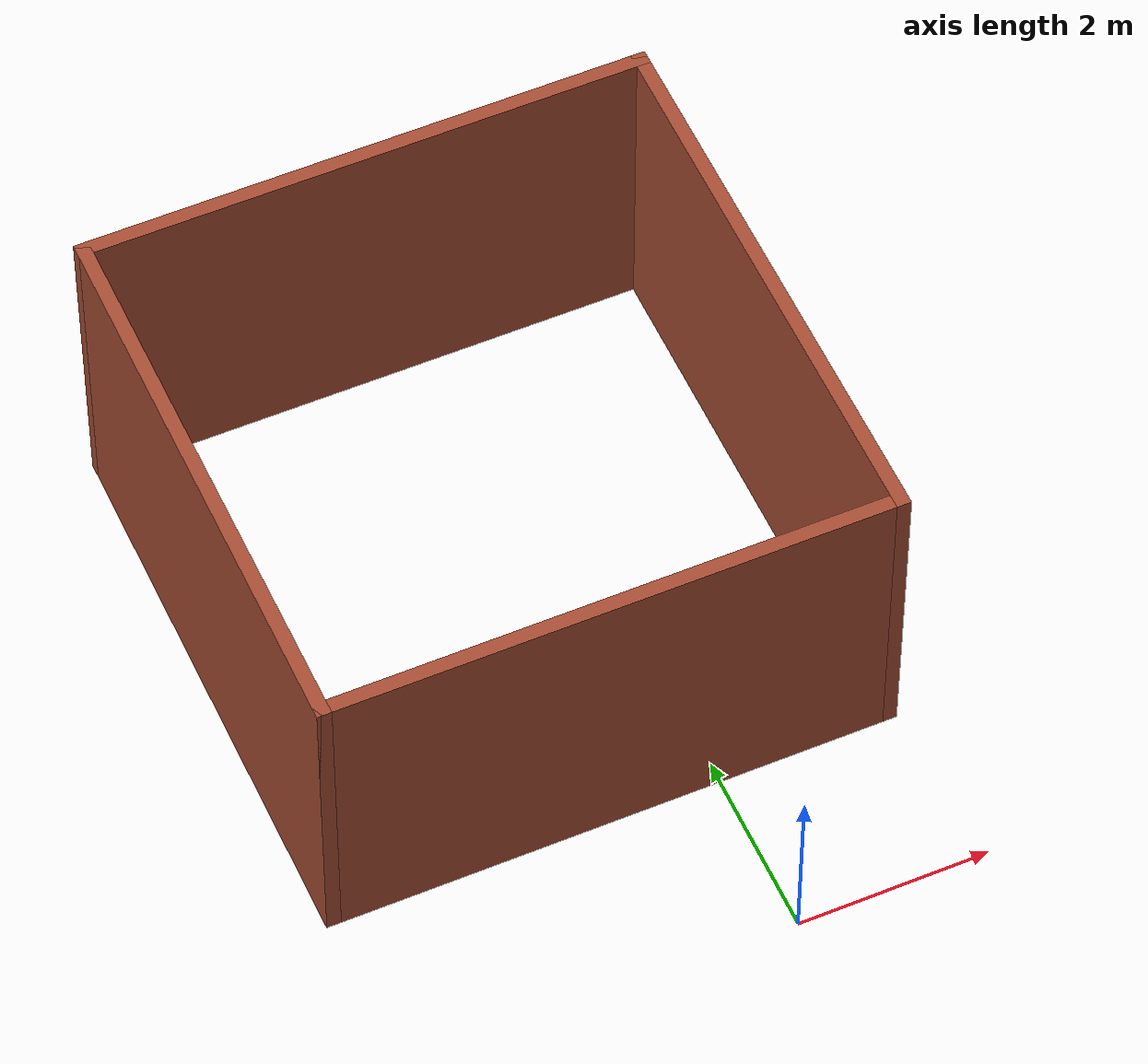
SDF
<?xml version='1.0'?>
<sdf version='1.5'>
  <model name='house_3b'>
    <pose frame=''>-1.117 4.778 0 0 -0 0</pose>
    <link name='Wall_2'>
      <collision name='Wall_2_Collision'>
        <geometry>
          <box>
            <size>6 0.15 3.5</size>
          </box>
        </geometry>
        <pose frame=''>0 0 1.75 0 -0 0</pose>
      </collision>
      <visual name='Wall_2_Visual'>
        <pose frame=''>0 0 1.75 0 -0 0</pose>
        <geometry>
          <box>
            <size>6 0.15 3.5</size>
          </box>
        </geometry>
        <material>
          <script>
            <uri>file://media/materials/scripts/gazebo.material</uri>
            <name>Gazebo/Bricks</name>
          </script>
          <ambient>1 1 1 1</ambient>
        </material>
      </visual>
      <pose frame=''>-2.925 0 0 0 0 -1.5708</pose>
    </link>
    <link name='Wall_3'>
      <collision name='Wall_3_Collision'>
        <geometry>
          <box>
            <size>6 0.15 3.5</size>
          </box>
        </geometry>
        <pose frame=''>0 0 1.75 0 -0 0</pose>
      </collision>
      <visual name='Wall_3_Visual'>
        <pose frame=''>0 0 1.75 0 -0 0</pose>
        <geometry>
          <box>
            <size>6 0.15 3.5</size>
          </box>
        </geometry>
        <material>
          <script>
            <uri>file://media/materials/scripts/gazebo.material</uri>
            <name>Gazebo/Bricks</name>
          </script>
          <ambient>1 1 1 1</ambient>
        </material>
      </visual>
      <pose frame=''>-0 -2.925 0 0 -0 0</pose>
    </link>
    <link name='Wall_4'>
      <collision name='Wall_4_Collision'>
        <geometry>
          <box>
            <size>6 0.15 3.5</size>
          </box>
        </geometry>
        <pose frame=''>0 0 1.75 0 -0 0</pose>
      </collision>
      <visual name='Wall_4_Visual'>
        <pose frame=''>0 0 1.75 0 -0 0</pose>
        <geometry>
          <box>
            <size>6 0.15 3.5</size>
          </box>
        </geometry>
        <material>
          <script>
            <uri>file://media/materials/scripts/gazebo.material</uri>
            <name>Gazebo/Bricks</name>
          </script>
          <ambient>1 1 1 1</ambient>
        </material>
      </visual>
      <pose frame=''>2.925 0 0 0 -0 1.5708</pose>
    </link>
    <link name='Wall_5'>
      <collision name='Wall_5_Collision'>
        <geometry>
          <box>
            <size>6 0.15 3.5</size>
          </box>
        </geometry>
        <pose frame=''>0 0 1.75 0 -0 0</pose>
      </collision>
      <visual name='Wall_5_Visual'>
        <pose frame=''>0 0 1.75 0 -0 0</pose>
        <geometry>
          <box>
            <size>6 0.15 3.5</size>
          </box>
        </geometry>
        <material>
          <script>
            <uri>file://media/materials/scripts/gazebo.material</uri>
            <name>Gazebo/Bricks</name>
          </script>
          <ambient>1 1 1 1</ambient>
        </material>
      </visual>
      <pose frame=''>-0 2.925 0 0 -0 3.14159</pose>
    </link>
    <static>1</static>
  </model>
</sdf>
